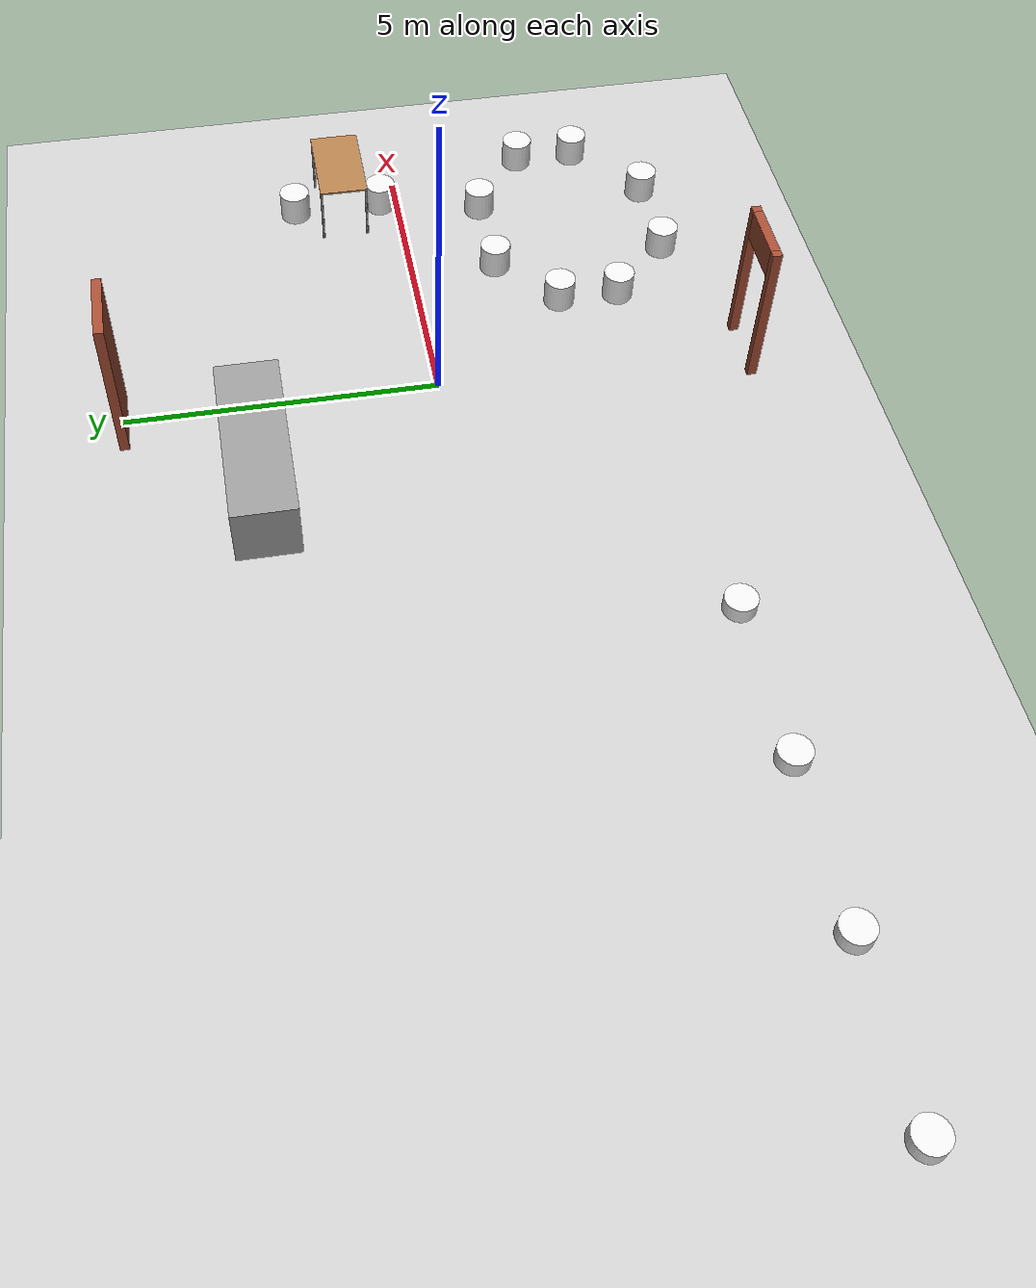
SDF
<sdf version="1.6">
 <world name="default">
  <model name="ground_plane">
   <static>1</static>
   <link name="link">
    <collision name="collision">
     <geometry><plane><normal>0 0 1</normal><size>100 100</size></plane></geometry>
     <surface>
      <contact><collide_bitmask>65535</collide_bitmask></contact>
      <friction><ode><mu>100</mu><mu2>50</mu2></ode></friction>
     </surface>
    </collision>
    <visual name="visual">
     <cast_shadows>0</cast_shadows>
     <geometry><plane><normal>0 0 1</normal><size>100 100</size></plane></geometry>
     <material>
      <script><uri>file://media/materials/scripts/gazebo.material</uri><name>Gazebo/Grey</name></script>
     </material>
    </visual>
   </link>
  </model>
  <model name="cafeopen">
   <link name="Wall_0">
    <pose>-0 -5 0 0 -0 3.14159</pose>
    <visual name="Wall_0_Visual_0">
     <pose>-0.5125 0 1.25 0 -0 0</pose>
     <geometry><box><size>0.125 0.15 2.5</size></box></geometry>
     <material>
      <script><uri>file://media/materials/scripts/gazebo.material</uri><name>Gazebo/Bricks</name></script>
      <ambient>1 1 1 1</ambient>
     </material>
     <meta><layer>0</layer></meta>
    </visual>
    <collision name="Wall_0_Collision_0">
     <geometry><box><size>0.125 0.15 2.5</size></box></geometry>
     <pose>-0.5125 0 1.25 0 -0 0</pose>
    </collision>
    <visual name="Wall_0_Visual_1">
     <pose>0.5125 0 1.25 0 -0 0</pose>
     <geometry><box><size>0.125 0.15 2.5</size></box></geometry>
     <material>
      <script><uri>file://media/materials/scripts/gazebo.material</uri><name>Gazebo/Bricks</name></script>
      <ambient>1 1 1 1</ambient>
     </material>
     <meta><layer>0</layer></meta>
    </visual>
    <collision name="Wall_0_Collision_1">
     <geometry><box><size>0.125 0.15 2.5</size></box></geometry>
     <pose>0.5125 0 1.25 0 -0 0</pose>
    </collision>
    <visual name="Wall_0_Visual_2">
     <pose>0 0 2.25 0 -0 0</pose>
     <geometry><box><size>0.9 0.15 0.5</size></box></geometry>
     <material>
      <script><uri>file://media/materials/scripts/gazebo.material</uri><name>Gazebo/Bricks</name></script>
      <ambient>1 1 1 1</ambient>
     </material>
     <meta><layer>0</layer></meta>
    </visual>
    <collision name="Wall_0_Collision_2">
     <geometry><box><size>0.9 0.15 0.5</size></box></geometry>
     <pose>0 0 2.25 0 -0 0</pose>
    </collision>
   </link>
   <link name="Wall_2">
    <collision name="Wall_2_Collision">
     <geometry><box><size>1.15 0.15 2.5</size></box></geometry>
     <pose>0 0 1.25 0 -0 0</pose>
    </collision>
    <visual name="Wall_2_Visual">
     <pose>0 0 1.25 0 -0 0</pose>
     <geometry><box><size>1.15 0.15 2.5</size></box></geometry>
     <material>
      <script><uri>file://media/materials/scripts/gazebo.material</uri><name>Gazebo/Bricks</name></script>
      <ambient>1 1 1 1</ambient>
     </material>
     <meta><layer>0</layer></meta>
    </visual>
    <pose>-0 5 0 0 -0 0</pose>
   </link>
   <static>1</static>
  </model>
  <model name="table_2">
   <static>1</static>
   <link name="link">
    <collision name="surface">
     <pose>0 0 1 0 -0 0</pose>
     <geometry><box><size>1.5 0.8 0.03</size></box></geometry>
     <surface><friction><ode><mu>0.6</mu><mu2>0.6</mu2></ode></friction></surface>
    </collision>
    <visual name="visual1">
     <pose>0 0 1 0 -0 0</pose>
     <geometry><box><size>1.5 0.8 0.03</size></box></geometry>
     <material>
      <script><uri>file://media/materials/scripts/gazebo.material</uri><name>Gazebo/Wood</name></script>
     </material>
    </visual>
    <collision name="front_left_leg">
     <pose>0.68 0.38 0.5 0 -0 0</pose>
     <geometry><cylinder><radius>0.02</radius><length>1</length></cylinder></geometry>
    </collision>
    <visual name="front_left_leg">
     <pose>0.68 0.38 0.5 0 -0 0</pose>
     <geometry><cylinder><radius>0.02</radius><length>1</length></cylinder></geometry>
     <material>
      <script><uri>file://media/materials/scripts/gazebo.material</uri><name>Gazebo/Grey</name></script>
     </material>
    </visual>
    <collision name="front_right_leg">
     <pose>0.68 -0.38 0.5 0 -0 0</pose>
     <geometry><cylinder><radius>0.02</radius><length>1</length></cylinder></geometry>
    </collision>
    <visual name="front_right_leg">
     <pose>0.68 -0.38 0.5 0 -0 0</pose>
     <geometry><cylinder><radius>0.02</radius><length>1</length></cylinder></geometry>
     <material>
      <script><uri>file://media/materials/scripts/gazebo.material</uri><name>Gazebo/Grey</name></script>
     </material>
    </visual>
    <collision name="back_right_leg">
     <pose>-0.68 -0.38 0.5 0 -0 0</pose>
     <geometry><cylinder><radius>0.02</radius><length>1</length></cylinder></geometry>
    </collision>
    <visual name="back_right_leg">
     <pose>-0.68 -0.38 0.5 0 -0 0</pose>
     <geometry><cylinder><radius>0.02</radius><length>1</length></cylinder></geometry>
     <material>
      <script><uri>file://media/materials/scripts/gazebo.material</uri><name>Gazebo/Grey</name></script>
     </material>
    </visual>
    <collision name="back_left_leg">
     <pose>-0.68 0.38 0.5 0 -0 0</pose>
     <geometry><cylinder><radius>0.02</radius><length>1</length></cylinder></geometry>
    </collision>
    <visual name="back_left_leg">
     <pose>-0.68 0.38 0.5 0 -0 0</pose>
     <geometry><cylinder><radius>0.02</radius><length>1</length></cylinder></geometry>
     <material>
      <script><uri>file://media/materials/scripts/gazebo.material</uri><name>Gazebo/Grey</name></script>
     </material>
    </visual>
   </link>
   <pose>4.5 1 0 0 -0 0</pose>
  </model>
  <model name="chair4">
   <link name="link_1">
    <inertial>
     <mass>1</mass>
     <inertia><ixx>0.145833</ixx><ixy>0</ixy><ixz>0</ixz><iyy>0.145833</iyy><iyz>0</iyz><izz>0.125</izz></inertia>
    </inertial>
    <visual name="visual">
     <geometry><cylinder><radius>0.25</radius><length>0.5</length></cylinder></geometry>
     <material>
      <lighting>1</lighting>
      <script><uri>file://media/materials/scripts/gazebo.material</uri><name>Gazebo/White</name></script>
      <shader type="vertex"><normal_map>__default__</normal_map></shader>
      <ambient>0.9 0.7 0.5 1</ambient>
      <diffuse>0.7 0.7 0.7 1</diffuse>
      <specular>0.01 0.01 0.01 1</specular>
      <emissive>0 0 0 1</emissive>
     </material>
    </visual>
    <collision name="collision">
     <geometry><cylinder><radius>0.25</radius><length>0.5</length></cylinder></geometry>
     <surface>
      <friction>
       <ode><mu>1</mu><mu2>1</mu2><fdir1>0 0 0</fdir1><slip1>0</slip1><slip2>0</slip2></ode>
       <torsional>
        <coefficient>1</coefficient>
        <patch_radius>0</patch_radius>
        <surface_radius>0</surface_radius>
        <use_patch_radius>1</use_patch_radius>
        <ode><slip>0</slip></ode>
       </torsional>
      </friction>
      <bounce><restitution_coefficient>0</restitution_coefficient><threshold>1e+06</threshold></bounce>
      <contact>
       <collide_without_contact>0</collide_without_contact>
       <collide_without_contact_bitmask>1</collide_without_contact_bitmask>
       <collide_bitmask>1</collide_bitmask>
       <ode>
        <soft_cfm>0</soft_cfm>
        <soft_erp>0.2</soft_erp>
        <kp>1e+13</kp>
        <kd>1</kd>
        <max_vel>0.01</max_vel>
        <min_depth>0</min_depth>
       </ode>
       <bullet>
        <split_impulse>1</split_impulse>
        <split_impulse_penetration_threshold>-0.01</split_impulse_penetration_threshold>
        <soft_cfm>0</soft_cfm>
        <soft_erp>0.2</soft_erp>
        <kp>1e+13</kp>
        <kd>1</kd>
       </bullet>
      </contact>
     </surface>
    </collision>
   </link>
   <link name="link_1_clone">
    <inertial>
     <mass>1</mass>
     <inertia><ixx>0.145833</ixx><ixy>0</ixy><ixz>0</ixz><iyy>0.145833</iyy><iyz>0</iyz><izz>0.125</izz></inertia>
    </inertial>
    <pose>0 -1 0 0 -0 0</pose>
    <visual name="visual">
     <geometry><cylinder><radius>0.25</radius><length>0.5</length></cylinder></geometry>
     <material>
      <lighting>1</lighting>
      <script><uri>file://media/materials/scripts/gazebo.material</uri><name>Gazebo/White</name></script>
      <shader type="vertex"><normal_map>__default__</normal_map></shader>
      <ambient>0.9 0.7 0.5 1</ambient>
      <diffuse>0.7 0.7 0.7 1</diffuse>
      <specular>0.01 0.01 0.01 1</specular>
      <emissive>0 0 0 1</emissive>
     </material>
    </visual>
    <collision name="collision">
     <geometry><cylinder><radius>0.25</radius><length>0.5</length></cylinder></geometry>
     <surface>
      <friction>
       <ode><mu>1</mu><mu2>1</mu2><fdir1>0 0 0</fdir1><slip1>0</slip1><slip2>0</slip2></ode>
       <torsional>
        <coefficient>1</coefficient>
        <patch_radius>0</patch_radius>
        <surface_radius>0</surface_radius>
        <use_patch_radius>1</use_patch_radius>
        <ode><slip>0</slip></ode>
       </torsional>
      </friction>
      <bounce><restitution_coefficient>0</restitution_coefficient><threshold>1e+06</threshold></bounce>
      <contact>
       <collide_without_contact>0</collide_without_contact>
       <collide_without_contact_bitmask>1</collide_without_contact_bitmask>
       <collide_bitmask>1</collide_bitmask>
       <ode>
        <soft_cfm>0</soft_cfm>
        <soft_erp>0.2</soft_erp>
        <kp>1e+13</kp>
        <kd>1</kd>
        <max_vel>0.01</max_vel>
        <min_depth>0</min_depth>
       </ode>
       <bullet>
        <split_impulse>1</split_impulse>
        <split_impulse_penetration_threshold>-0.01</split_impulse_penetration_threshold>
        <soft_cfm>0</soft_cfm>
        <soft_erp>0.2</soft_erp>
        <kp>1e+13</kp>
        <kd>1</kd>
       </bullet>
      </contact>
     </surface>
    </collision>
   </link>
   <static>0</static>
   <pose>5.3 -2.3 0.249991 0 -0 0</pose>
  </model>
  <model name="chair3_1">
   <link name="link_1">
    <inertial>
     <mass>1</mass>
     <inertia><ixx>0.145833</ixx><ixy>0</ixy><ixz>0</ixz><iyy>0.145833</iyy><iyz>0</iyz><izz>0.125</izz></inertia>
    </inertial>
    <visual name="visual">
     <geometry><cylinder><radius>0.25</radius><length>0.5</length></cylinder></geometry>
     <material>
      <lighting>1</lighting>
      <script><uri>file://media/materials/scripts/gazebo.material</uri><name>Gazebo/White</name></script>
      <shader type="vertex"><normal_map>__default__</normal_map></shader>
      <ambient>0.9 0.7 0.5 1</ambient>
      <diffuse>0.7 0.7 0.7 1</diffuse>
      <specular>0.01 0.01 0.01 1</specular>
      <emissive>0 0 0 1</emissive>
     </material>
    </visual>
    <collision name="collision">
     <geometry><cylinder><radius>0.25</radius><length>0.5</length></cylinder></geometry>
     <surface>
      <friction>
       <ode><mu>1</mu><mu2>1</mu2><fdir1>0 0 0</fdir1><slip1>0</slip1><slip2>0</slip2></ode>
       <torsional>
        <coefficient>1</coefficient>
        <patch_radius>0</patch_radius>
        <surface_radius>0</surface_radius>
        <use_patch_radius>1</use_patch_radius>
        <ode><slip>0</slip></ode>
       </torsional>
      </friction>
      <bounce><restitution_coefficient>0</restitution_coefficient><threshold>1e+06</threshold></bounce>
      <contact>
       <collide_without_contact>0</collide_without_contact>
       <collide_without_contact_bitmask>1</collide_without_contact_bitmask>
       <collide_bitmask>1</collide_bitmask>
       <ode>
        <soft_cfm>0</soft_cfm>
        <soft_erp>0.2</soft_erp>
        <kp>1e+13</kp>
        <kd>1</kd>
        <max_vel>0.01</max_vel>
        <min_depth>0</min_depth>
       </ode>
       <bullet>
        <split_impulse>1</split_impulse>
        <split_impulse_penetration_threshold>-0.01</split_impulse_penetration_threshold>
        <soft_cfm>0</soft_cfm>
        <soft_erp>0.2</soft_erp>
        <kp>1e+13</kp>
        <kd>1</kd>
       </bullet>
      </contact>
     </surface>
    </collision>
   </link>
   <link name="link_1_clone">
    <inertial>
     <mass>1</mass>
     <inertia><ixx>0.145833</ixx><ixy>0</ixy><ixz>0</ixz><iyy>0.145833</iyy><iyz>0</iyz><izz>0.125</izz></inertia>
    </inertial>
    <pose>0 -1.5 0 0 -0 0</pose>
    <visual name="visual">
     <geometry><cylinder><radius>0.25</radius><length>0.5</length></cylinder></geometry>
     <material>
      <lighting>1</lighting>
      <script><uri>file://media/materials/scripts/gazebo.material</uri><name>Gazebo/White</name></script>
      <shader type="vertex"><normal_map>__default__</normal_map></shader>
      <ambient>0.9 0.7 0.5 1</ambient>
      <diffuse>0.7 0.7 0.7 1</diffuse>
      <specular>0.01 0.01 0.01 1</specular>
      <emissive>0 0 0 1</emissive>
     </material>
    </visual>
    <collision name="collision">
     <geometry><cylinder><radius>0.25</radius><length>0.5</length></cylinder></geometry>
     <surface>
      <friction>
       <ode><mu>1</mu><mu2>1</mu2><fdir1>0 0 0</fdir1><slip1>0</slip1><slip2>0</slip2></ode>
       <torsional>
        <coefficient>1</coefficient>
        <patch_radius>0</patch_radius>
        <surface_radius>0</surface_radius>
        <use_patch_radius>1</use_patch_radius>
        <ode><slip>0</slip></ode>
       </torsional>
      </friction>
      <bounce><restitution_coefficient>0</restitution_coefficient><threshold>1e+06</threshold></bounce>
      <contact>
       <collide_without_contact>0</collide_without_contact>
       <collide_without_contact_bitmask>1</collide_without_contact_bitmask>
       <collide_bitmask>1</collide_bitmask>
       <ode>
        <soft_cfm>0</soft_cfm>
        <soft_erp>0.2</soft_erp>
        <kp>1e+13</kp>
        <kd>1</kd>
        <max_vel>0.01</max_vel>
        <min_depth>0</min_depth>
       </ode>
       <bullet>
        <split_impulse>1</split_impulse>
        <split_impulse_penetration_threshold>-0.01</split_impulse_penetration_threshold>
        <soft_cfm>0</soft_cfm>
        <soft_erp>0.2</soft_erp>
        <kp>1e+13</kp>
        <kd>1</kd>
       </bullet>
      </contact>
     </surface>
    </collision>
   </link>
   <static>0</static>
   <pose>4.5 1.8 0.249993 0 -0 0</pose>
  </model>
  <model name="chair4_0">
   <link name="link_1">
    <inertial>
     <mass>1</mass>
     <inertia><ixx>0.145833</ixx><ixy>0</ixy><ixz>0</ixz><iyy>0.145833</iyy><iyz>0</iyz><izz>0.125</izz></inertia>
    </inertial>
    <visual name="visual">
     <geometry><cylinder><radius>0.25</radius><length>0.5</length></cylinder></geometry>
     <material>
      <lighting>1</lighting>
      <script><uri>file://media/materials/scripts/gazebo.material</uri><name>Gazebo/White</name></script>
      <shader type="vertex"><normal_map>__default__</normal_map></shader>
      <ambient>0.9 0.7 0.5 1</ambient>
      <diffuse>0.7 0.7 0.7 1</diffuse>
      <specular>0.01 0.01 0.01 1</specular>
      <emissive>0 0 0 1</emissive>
     </material>
    </visual>
    <collision name="collision">
     <geometry><cylinder><radius>0.25</radius><length>0.5</length></cylinder></geometry>
     <surface>
      <friction>
       <ode><mu>1</mu><mu2>1</mu2><fdir1>0 0 0</fdir1><slip1>0</slip1><slip2>0</slip2></ode>
       <torsional>
        <coefficient>1</coefficient>
        <patch_radius>0</patch_radius>
        <surface_radius>0</surface_radius>
        <use_patch_radius>1</use_patch_radius>
        <ode><slip>0</slip></ode>
       </torsional>
      </friction>
      <bounce><restitution_coefficient>0</restitution_coefficient><threshold>1e+06</threshold></bounce>
      <contact>
       <collide_without_contact>0</collide_without_contact>
       <collide_without_contact_bitmask>1</collide_without_contact_bitmask>
       <collide_bitmask>1</collide_bitmask>
       <ode>
        <soft_cfm>0</soft_cfm>
        <soft_erp>0.2</soft_erp>
        <kp>1e+13</kp>
        <kd>1</kd>
        <max_vel>0.01</max_vel>
        <min_depth>0</min_depth>
       </ode>
       <bullet>
        <split_impulse>1</split_impulse>
        <split_impulse_penetration_threshold>-0.01</split_impulse_penetration_threshold>
        <soft_cfm>0</soft_cfm>
        <soft_erp>0.2</soft_erp>
        <kp>1e+13</kp>
        <kd>1</kd>
       </bullet>
      </contact>
     </surface>
    </collision>
   </link>
   <link name="link_1_clone">
    <inertial>
     <mass>1</mass>
     <inertia><ixx>0.145833</ixx><ixy>0</ixy><ixz>0</ixz><iyy>0.145833</iyy><iyz>0</iyz><izz>0.125</izz></inertia>
    </inertial>
    <pose>0 -1 0 0 -0 0</pose>
    <visual name="visual">
     <geometry><cylinder><radius>0.25</radius><length>0.5</length></cylinder></geometry>
     <material>
      <lighting>1</lighting>
      <script><uri>file://media/materials/scripts/gazebo.material</uri><name>Gazebo/White</name></script>
      <shader type="vertex"><normal_map>__default__</normal_map></shader>
      <ambient>0.9 0.7 0.5 1</ambient>
      <diffuse>0.7 0.7 0.7 1</diffuse>
      <specular>0.01 0.01 0.01 1</specular>
      <emissive>0 0 0 1</emissive>
     </material>
    </visual>
    <collision name="collision">
     <geometry><cylinder><radius>0.25</radius><length>0.5</length></cylinder></geometry>
     <surface>
      <friction>
       <ode><mu>1</mu><mu2>1</mu2><fdir1>0 0 0</fdir1><slip1>0</slip1><slip2>0</slip2></ode>
       <torsional>
        <coefficient>1</coefficient>
        <patch_radius>0</patch_radius>
        <surface_radius>0</surface_radius>
        <use_patch_radius>1</use_patch_radius>
        <ode><slip>0</slip></ode>
       </torsional>
      </friction>
      <bounce><restitution_coefficient>0</restitution_coefficient><threshold>1e+06</threshold></bounce>
      <contact>
       <collide_without_contact>0</collide_without_contact>
       <collide_without_contact_bitmask>1</collide_without_contact_bitmask>
       <collide_bitmask>1</collide_bitmask>
       <ode>
        <soft_cfm>0</soft_cfm>
        <soft_erp>0.2</soft_erp>
        <kp>1e+13</kp>
        <kd>1</kd>
        <max_vel>0.01</max_vel>
        <min_depth>0</min_depth>
       </ode>
       <bullet>
        <split_impulse>1</split_impulse>
        <split_impulse_penetration_threshold>-0.01</split_impulse_penetration_threshold>
        <soft_cfm>0</soft_cfm>
        <soft_erp>0.2</soft_erp>
        <kp>1e+13</kp>
        <kd>1</kd>
       </bullet>
      </contact>
     </surface>
    </collision>
   </link>
   <static>0</static>
   <pose>1.6 -2.3 0.249999 0 -0 0</pose>
  </model>
  <model name="chair5">
   <link name="link_1">
    <inertial>
     <mass>1</mass>
     <inertia><ixx>0.145833</ixx><ixy>0</ixy><ixz>0</ixz><iyy>0.145833</iyy><iyz>0</iyz><izz>0.125</izz></inertia>
    </inertial>
    <visual name="visual">
     <geometry><cylinder><radius>0.25</radius><length>0.5</length></cylinder></geometry>
     <material>
      <lighting>1</lighting>
      <script><uri>file://media/materials/scripts/gazebo.material</uri><name>Gazebo/White</name></script>
      <shader type="vertex"><normal_map>__default__</normal_map></shader>
      <ambient>0.9 0.7 0.5 1</ambient>
      <diffuse>0.7 0.7 0.7 1</diffuse>
      <specular>0.01 0.01 0.01 1</specular>
      <emissive>0 0 0 1</emissive>
     </material>
    </visual>
    <collision name="collision">
     <geometry><cylinder><radius>0.25</radius><length>0.5</length></cylinder></geometry>
     <surface>
      <friction>
       <ode><mu>1</mu><mu2>1</mu2><fdir1>0 0 0</fdir1><slip1>0</slip1><slip2>0</slip2></ode>
       <torsional>
        <coefficient>1</coefficient>
        <patch_radius>0</patch_radius>
        <surface_radius>0</surface_radius>
        <use_patch_radius>1</use_patch_radius>
        <ode><slip>0</slip></ode>
       </torsional>
      </friction>
      <bounce><restitution_coefficient>0</restitution_coefficient><threshold>1e+06</threshold></bounce>
      <contact>
       <collide_without_contact>0</collide_without_contact>
       <collide_without_contact_bitmask>1</collide_without_contact_bitmask>
       <collide_bitmask>1</collide_bitmask>
       <ode>
        <soft_cfm>0</soft_cfm>
        <soft_erp>0.2</soft_erp>
        <kp>1e+13</kp>
        <kd>1</kd>
        <max_vel>0.01</max_vel>
        <min_depth>0</min_depth>
       </ode>
       <bullet>
        <split_impulse>1</split_impulse>
        <split_impulse_penetration_threshold>-0.01</split_impulse_penetration_threshold>
        <soft_cfm>0</soft_cfm>
        <soft_erp>0.2</soft_erp>
        <kp>1e+13</kp>
        <kd>1</kd>
       </bullet>
      </contact>
     </surface>
    </collision>
   </link>
   <link name="link_1_clone">
    <inertial>
     <mass>1</mass>
     <inertia><ixx>0.145833</ixx><ixy>0</ixy><ixz>0</ixz><iyy>0.145833</iyy><iyz>0</iyz><izz>0.125</izz></inertia>
    </inertial>
    <pose>-1.5 0 0 0 -0 0</pose>
    <visual name="visual">
     <geometry><cylinder><radius>0.25</radius><length>0.5</length></cylinder></geometry>
     <material>
      <lighting>1</lighting>
      <script><uri>file://media/materials/scripts/gazebo.material</uri><name>Gazebo/White</name></script>
      <shader type="vertex"><normal_map>__default__</normal_map></shader>
      <ambient>0.9 0.7 0.5 1</ambient>
      <diffuse>0.7 0.7 0.7 1</diffuse>
      <specular>0.01 0.01 0.01 1</specular>
      <emissive>0 0 0 1</emissive>
     </material>
    </visual>
    <collision name="collision">
     <geometry><cylinder><radius>0.25</radius><length>0.5</length></cylinder></geometry>
     <surface>
      <friction>
       <ode><mu>1</mu><mu2>1</mu2><fdir1>0 0 0</fdir1><slip1>0</slip1><slip2>0</slip2></ode>
       <torsional>
        <coefficient>1</coefficient>
        <patch_radius>0</patch_radius>
        <surface_radius>0</surface_radius>
        <use_patch_radius>1</use_patch_radius>
        <ode><slip>0</slip></ode>
       </torsional>
      </friction>
      <bounce><restitution_coefficient>0</restitution_coefficient><threshold>1e+06</threshold></bounce>
      <contact>
       <collide_without_contact>0</collide_without_contact>
       <collide_without_contact_bitmask>1</collide_without_contact_bitmask>
       <collide_bitmask>1</collide_bitmask>
       <ode>
        <soft_cfm>0</soft_cfm>
        <soft_erp>0.2</soft_erp>
        <kp>1e+13</kp>
        <kd>1</kd>
        <max_vel>0.01</max_vel>
        <min_depth>0</min_depth>
       </ode>
       <bullet>
        <split_impulse>1</split_impulse>
        <split_impulse_penetration_threshold>-0.01</split_impulse_penetration_threshold>
        <soft_cfm>0</soft_cfm>
        <soft_erp>0.2</soft_erp>
        <kp>1e+13</kp>
        <kd>1</kd>
       </bullet>
      </contact>
     </surface>
    </collision>
   </link>
   <static>0</static>
   <pose>4.1 -1.4 0.249999 0 -0 0</pose>
  </model>
  <model name="chair5_0">
   <link name="link_1">
    <inertial>
     <mass>1</mass>
     <inertia><ixx>0.145833</ixx><ixy>0</ixy><ixz>0</ixz><iyy>0.145833</iyy><iyz>0</iyz><izz>0.125</izz></inertia>
    </inertial>
    <visual name="visual">
     <geometry><cylinder><radius>0.25</radius><length>0.5</length></cylinder></geometry>
     <material>
      <lighting>1</lighting>
      <script><uri>file://media/materials/scripts/gazebo.material</uri><name>Gazebo/White</name></script>
      <shader type="vertex"><normal_map>__default__</normal_map></shader>
      <ambient>0.9 0.7 0.5 1</ambient>
      <diffuse>0.7 0.7 0.7 1</diffuse>
      <specular>0.01 0.01 0.01 1</specular>
      <emissive>0 0 0 1</emissive>
     </material>
    </visual>
    <collision name="collision">
     <geometry><cylinder><radius>0.25</radius><length>0.5</length></cylinder></geometry>
     <surface>
      <friction>
       <ode><mu>1</mu><mu2>1</mu2><fdir1>0 0 0</fdir1><slip1>0</slip1><slip2>0</slip2></ode>
       <torsional>
        <coefficient>1</coefficient>
        <patch_radius>0</patch_radius>
        <surface_radius>0</surface_radius>
        <use_patch_radius>1</use_patch_radius>
        <ode><slip>0</slip></ode>
       </torsional>
      </friction>
      <bounce><restitution_coefficient>0</restitution_coefficient><threshold>1e+06</threshold></bounce>
      <contact>
       <collide_without_contact>0</collide_without_contact>
       <collide_without_contact_bitmask>1</collide_without_contact_bitmask>
       <collide_bitmask>1</collide_bitmask>
       <ode>
        <soft_cfm>0</soft_cfm>
        <soft_erp>0.2</soft_erp>
        <kp>1e+13</kp>
        <kd>1</kd>
        <max_vel>0.01</max_vel>
        <min_depth>0</min_depth>
       </ode>
       <bullet>
        <split_impulse>1</split_impulse>
        <split_impulse_penetration_threshold>-0.01</split_impulse_penetration_threshold>
        <soft_cfm>0</soft_cfm>
        <soft_erp>0.2</soft_erp>
        <kp>1e+13</kp>
        <kd>1</kd>
       </bullet>
      </contact>
     </surface>
    </collision>
   </link>
   <link name="link_1_clone">
    <inertial>
     <mass>1</mass>
     <inertia><ixx>0.145833</ixx><ixy>0</ixy><ixz>0</ixz><iyy>0.145833</iyy><iyz>0</iyz><izz>0.125</izz></inertia>
    </inertial>
    <pose>-1.5 0 0 0 -0 0</pose>
    <visual name="visual">
     <geometry><cylinder><radius>0.25</radius><length>0.5</length></cylinder></geometry>
     <material>
      <lighting>1</lighting>
      <script><uri>file://media/materials/scripts/gazebo.material</uri><name>Gazebo/White</name></script>
      <shader type="vertex"><normal_map>__default__</normal_map></shader>
      <ambient>0.9 0.7 0.5 1</ambient>
      <diffuse>0.7 0.7 0.7 1</diffuse>
      <specular>0.01 0.01 0.01 1</specular>
      <emissive>0 0 0 1</emissive>
     </material>
    </visual>
    <collision name="collision">
     <geometry><cylinder><radius>0.25</radius><length>0.5</length></cylinder></geometry>
     <surface>
      <friction>
       <ode><mu>1</mu><mu2>1</mu2><fdir1>0 0 0</fdir1><slip1>0</slip1><slip2>0</slip2></ode>
       <torsional>
        <coefficient>1</coefficient>
        <patch_radius>0</patch_radius>
        <surface_radius>0</surface_radius>
        <use_patch_radius>1</use_patch_radius>
        <ode><slip>0</slip></ode>
       </torsional>
      </friction>
      <bounce><restitution_coefficient>0</restitution_coefficient><threshold>1e+06</threshold></bounce>
      <contact>
       <collide_without_contact>0</collide_without_contact>
       <collide_without_contact_bitmask>1</collide_without_contact_bitmask>
       <collide_bitmask>1</collide_bitmask>
       <ode>
        <soft_cfm>0</soft_cfm>
        <soft_erp>0.2</soft_erp>
        <kp>1e+13</kp>
        <kd>1</kd>
        <max_vel>0.01</max_vel>
        <min_depth>0</min_depth>
       </ode>
       <bullet>
        <split_impulse>1</split_impulse>
        <split_impulse_penetration_threshold>-0.01</split_impulse_penetration_threshold>
        <soft_cfm>0</soft_cfm>
        <soft_erp>0.2</soft_erp>
        <kp>1e+13</kp>
        <kd>1</kd>
       </bullet>
      </contact>
     </surface>
    </collision>
   </link>
   <static>0</static>
   <pose>4.1 -4.3 0.249998 -0 -0 -0</pose>
  </model>
  <model name="chair6_0">
   <link name="link_1">
    <inertial>
     <mass>1</mass>
     <inertia><ixx>0.145833</ixx><ixy>0</ixy><ixz>0</ixz><iyy>0.145833</iyy><iyz>0</iyz><izz>0.125</izz></inertia>
    </inertial>
    <visual name="visual">
     <geometry><cylinder><radius>0.25</radius><length>0.5</length></cylinder></geometry>
     <material>
      <lighting>1</lighting>
      <script><uri>file://media/materials/scripts/gazebo.material</uri><name>Gazebo/White</name></script>
      <shader type="vertex"><normal_map>__default__</normal_map></shader>
      <ambient>0.9 0.7 0.5 1</ambient>
      <diffuse>0.7 0.7 0.7 1</diffuse>
      <specular>0.01 0.01 0.01 1</specular>
      <emissive>0 0 0 1</emissive>
     </material>
    </visual>
    <collision name="collision">
     <geometry><cylinder><radius>0.25</radius><length>0.5</length></cylinder></geometry>
     <surface>
      <friction>
       <ode><mu>1</mu><mu2>1</mu2><fdir1>0 0 0</fdir1><slip1>0</slip1><slip2>0</slip2></ode>
       <torsional>
        <coefficient>1</coefficient>
        <patch_radius>0</patch_radius>
        <surface_radius>0</surface_radius>
        <use_patch_radius>1</use_patch_radius>
        <ode><slip>0</slip></ode>
       </torsional>
      </friction>
      <bounce><restitution_coefficient>0</restitution_coefficient><threshold>1e+06</threshold></bounce>
      <contact>
       <collide_without_contact>0</collide_without_contact>
       <collide_without_contact_bitmask>1</collide_without_contact_bitmask>
       <collide_bitmask>1</collide_bitmask>
       <ode>
        <soft_cfm>0</soft_cfm>
        <soft_erp>0.2</soft_erp>
        <kp>1e+13</kp>
        <kd>1</kd>
        <max_vel>0.01</max_vel>
        <min_depth>0</min_depth>
       </ode>
       <bullet>
        <split_impulse>1</split_impulse>
        <split_impulse_penetration_threshold>-0.01</split_impulse_penetration_threshold>
        <soft_cfm>0</soft_cfm>
        <soft_erp>0.2</soft_erp>
        <kp>1e+13</kp>
        <kd>1</kd>
       </bullet>
      </contact>
     </surface>
    </collision>
   </link>
   <link name="link_1_clone">
    <inertial>
     <mass>1</mass>
     <inertia><ixx>0.145833</ixx><ixy>0</ixy><ixz>0</ixz><iyy>0.145833</iyy><iyz>0</iyz><izz>0.125</izz></inertia>
    </inertial>
    <pose>-2.5 -0 0 0 -0 0</pose>
    <visual name="visual">
     <geometry><cylinder><radius>0.25</radius><length>0.5</length></cylinder></geometry>
     <material>
      <lighting>1</lighting>
      <script><uri>file://media/materials/scripts/gazebo.material</uri><name>Gazebo/White</name></script>
      <shader type="vertex"><normal_map>__default__</normal_map></shader>
      <ambient>0.9 0.7 0.5 1</ambient>
      <diffuse>0.7 0.7 0.7 1</diffuse>
      <specular>0.01 0.01 0.01 1</specular>
      <emissive>0 0 0 1</emissive>
     </material>
    </visual>
    <collision name="collision">
     <geometry><cylinder><radius>0.25</radius><length>0.5</length></cylinder></geometry>
     <surface>
      <friction>
       <ode><mu>1</mu><mu2>1</mu2><fdir1>0 0 0</fdir1><slip1>0</slip1><slip2>0</slip2></ode>
       <torsional>
        <coefficient>1</coefficient>
        <patch_radius>0</patch_radius>
        <surface_radius>0</surface_radius>
        <use_patch_radius>1</use_patch_radius>
        <ode><slip>0</slip></ode>
       </torsional>
      </friction>
      <bounce><restitution_coefficient>0</restitution_coefficient><threshold>1e+06</threshold></bounce>
      <contact>
       <collide_without_contact>0</collide_without_contact>
       <collide_without_contact_bitmask>1</collide_without_contact_bitmask>
       <collide_bitmask>1</collide_bitmask>
       <ode>
        <soft_cfm>0</soft_cfm>
        <soft_erp>0.2</soft_erp>
        <kp>1e+13</kp>
        <kd>1</kd>
        <max_vel>0.01</max_vel>
        <min_depth>0</min_depth>
       </ode>
       <bullet>
        <split_impulse>1</split_impulse>
        <split_impulse_penetration_threshold>-0.01</split_impulse_penetration_threshold>
        <soft_cfm>0</soft_cfm>
        <soft_erp>0.2</soft_erp>
        <kp>1e+13</kp>
        <kd>1</kd>
       </bullet>
      </contact>
     </surface>
    </collision>
   </link>
   <link name="link_1_clone_0_clone">
    <inertial>
     <mass>1</mass>
     <inertia><ixx>0.145833</ixx><ixy>0</ixy><ixz>0</ixz><iyy>0.145833</iyy><iyz>0</iyz><izz>0.125</izz></inertia>
    </inertial>
    <pose>-5 -0 0 0 -0 0</pose>
    <visual name="visual">
     <geometry><cylinder><radius>0.25</radius><length>0.5</length></cylinder></geometry>
     <material>
      <lighting>1</lighting>
      <script><uri>file://media/materials/scripts/gazebo.material</uri><name>Gazebo/White</name></script>
      <shader type="vertex"><normal_map>__default__</normal_map></shader>
      <ambient>0.9 0.7 0.5 1</ambient>
      <diffuse>0.7 0.7 0.7 1</diffuse>
      <specular>0.01 0.01 0.01 1</specular>
      <emissive>0 0 0 1</emissive>
     </material>
    </visual>
    <collision name="collision">
     <geometry><cylinder><radius>0.25</radius><length>0.5</length></cylinder></geometry>
     <surface>
      <friction>
       <ode><mu>1</mu><mu2>1</mu2><fdir1>0 0 0</fdir1><slip1>0</slip1><slip2>0</slip2></ode>
       <torsional>
        <coefficient>1</coefficient>
        <patch_radius>0</patch_radius>
        <surface_radius>0</surface_radius>
        <use_patch_radius>1</use_patch_radius>
        <ode><slip>0</slip></ode>
       </torsional>
      </friction>
      <bounce><restitution_coefficient>0</restitution_coefficient><threshold>1e+06</threshold></bounce>
      <contact>
       <collide_without_contact>0</collide_without_contact>
       <collide_without_contact_bitmask>1</collide_without_contact_bitmask>
       <collide_bitmask>1</collide_bitmask>
       <ode>
        <soft_cfm>0</soft_cfm>
        <soft_erp>0.2</soft_erp>
        <kp>1e+13</kp>
        <kd>1</kd>
        <max_vel>0.01</max_vel>
        <min_depth>0</min_depth>
       </ode>
       <bullet>
        <split_impulse>1</split_impulse>
        <split_impulse_penetration_threshold>-0.01</split_impulse_penetration_threshold>
        <soft_cfm>0</soft_cfm>
        <soft_erp>0.2</soft_erp>
        <kp>1e+13</kp>
        <kd>1</kd>
       </bullet>
      </contact>
     </surface>
    </collision>
   </link>
   <link name="link_1_clone_0_clone_clone">
    <inertial>
     <mass>1</mass>
     <inertia><ixx>0.145833</ixx><ixy>0</ixy><ixz>0</ixz><iyy>0.145833</iyy><iyz>0</iyz><izz>0.125</izz></inertia>
    </inertial>
    <pose>-7.5 -0 -0 0 -0 0</pose>
    <visual name="visual">
     <geometry><cylinder><radius>0.25</radius><length>0.5</length></cylinder></geometry>
     <material>
      <lighting>1</lighting>
      <script><uri>file://media/materials/scripts/gazebo.material</uri><name>Gazebo/White</name></script>
      <shader type="vertex"><normal_map>__default__</normal_map></shader>
      <ambient>0.9 0.7 0.5 1</ambient>
      <diffuse>0.7 0.7 0.7 1</diffuse>
      <specular>0.01 0.01 0.01 1</specular>
      <emissive>0 0 0 1</emissive>
     </material>
    </visual>
    <collision name="collision">
     <geometry><cylinder><radius>0.25</radius><length>0.5</length></cylinder></geometry>
     <surface>
      <friction>
       <ode><mu>1</mu><mu2>1</mu2><fdir1>0 0 0</fdir1><slip1>0</slip1><slip2>0</slip2></ode>
       <torsional>
        <coefficient>1</coefficient>
        <patch_radius>0</patch_radius>
        <surface_radius>0</surface_radius>
        <use_patch_radius>1</use_patch_radius>
        <ode><slip>0</slip></ode>
       </torsional>
      </friction>
      <bounce><restitution_coefficient>0</restitution_coefficient><threshold>1e+06</threshold></bounce>
      <contact>
       <collide_without_contact>0</collide_without_contact>
       <collide_without_contact_bitmask>1</collide_without_contact_bitmask>
       <collide_bitmask>1</collide_bitmask>
       <ode>
        <soft_cfm>0</soft_cfm>
        <soft_erp>0.2</soft_erp>
        <kp>1e+13</kp>
        <kd>1</kd>
        <max_vel>0.01</max_vel>
        <min_depth>0</min_depth>
       </ode>
       <bullet>
        <split_impulse>1</split_impulse>
        <split_impulse_penetration_threshold>-0.01</split_impulse_penetration_threshold>
        <soft_cfm>0</soft_cfm>
        <soft_erp>0.2</soft_erp>
        <kp>1e+13</kp>
        <kd>1</kd>
       </bullet>
      </contact>
     </surface>
    </collision>
   </link>
   <static>0</static>
   <pose>-5 -3.5 0 0 -0 0</pose>
  </model>
  <model name="desk">
   <link name="link_0">
    <inertial>
     <mass>1</mass>
     <inertia>
      <ixx>0.166667</ixx>
      <ixy>0</ixy>
      <ixz>0</ixz>
      <iyy>0.166667</iyy>
      <iyz>0</iyz>
      <izz>0.166667</izz>
     </inertia>
    </inertial>
    <visual name="visual">
     <geometry><box><size>3 1 1</size></box></geometry>
     <material>
      <lighting>1</lighting>
      <script><uri>file://media/materials/scripts/gazebo.material</uri><name>Gazebo/Grey</name></script>
      <shader type="vertex"><normal_map>__default__</normal_map></shader>
      <ambient>0.8 0.8 0.8 1</ambient>
      <diffuse>0.7 0.7 0.7 1</diffuse>
      <specular>0.01 0.01 0.01 1</specular>
      <emissive>0 0 0 1</emissive>
     </material>
    </visual>
    <collision name="collision">
     <geometry><box><size>3 1 1</size></box></geometry>
     <surface>
      <friction>
       <ode><mu>1</mu><mu2>1</mu2><fdir1>0 0 0</fdir1><slip1>0</slip1><slip2>0</slip2></ode>
       <torsional>
        <coefficient>1</coefficient>
        <patch_radius>0</patch_radius>
        <surface_radius>0</surface_radius>
        <use_patch_radius>1</use_patch_radius>
        <ode><slip>0</slip></ode>
       </torsional>
      </friction>
      <bounce><restitution_coefficient>0</restitution_coefficient><threshold>1e+06</threshold></bounce>
      <contact>
       <collide_without_contact>0</collide_without_contact>
       <collide_without_contact_bitmask>1</collide_without_contact_bitmask>
       <collide_bitmask>1</collide_bitmask>
       <ode>
        <soft_cfm>0</soft_cfm>
        <soft_erp>0.2</soft_erp>
        <kp>1e+13</kp>
        <kd>1</kd>
        <max_vel>0.01</max_vel>
        <min_depth>0</min_depth>
       </ode>
       <bullet>
        <split_impulse>1</split_impulse>
        <split_impulse_penetration_threshold>-0.01</split_impulse_penetration_threshold>
        <soft_cfm>0</soft_cfm>
        <soft_erp>0.2</soft_erp>
        <kp>1e+13</kp>
        <kd>1</kd>
       </bullet>
      </contact>
     </surface>
    </collision>
   </link>
   <static>0</static>
   <pose>-1.5 3 0.5 0 -0 0</pose>
  </model>
 </world>
</sdf>
